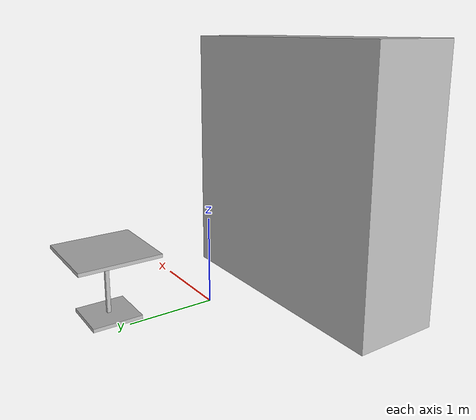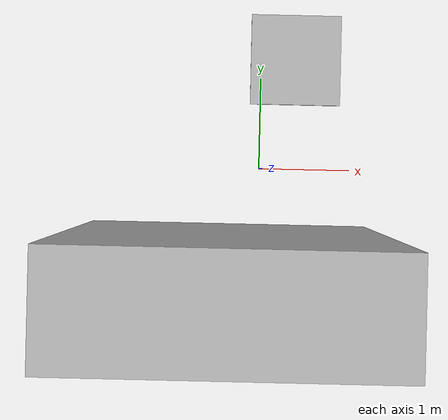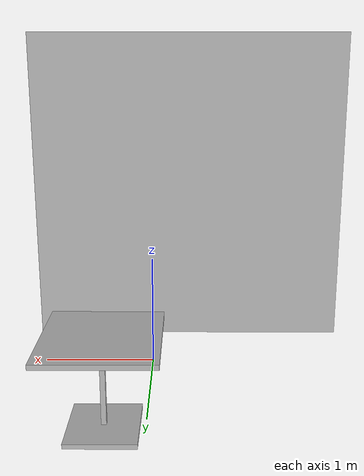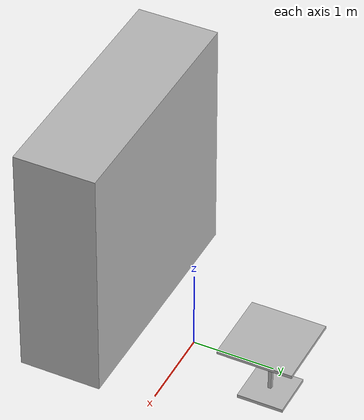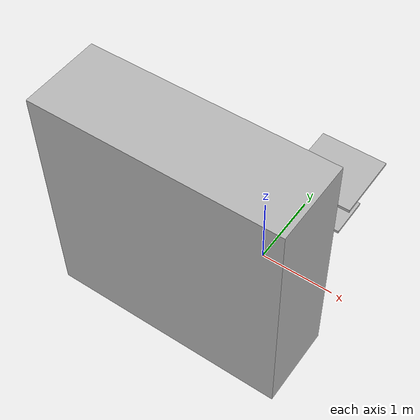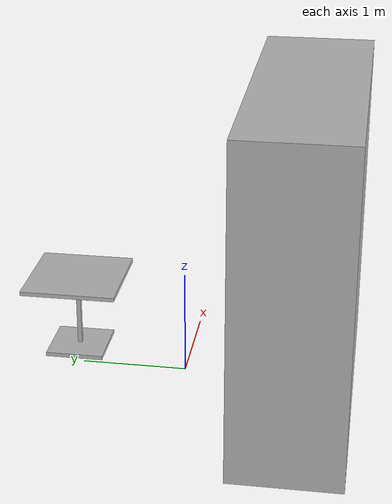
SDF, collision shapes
<?xml version='1.0'?>
<sdf version='1.7'>
  <model name='Untitledfdsssss'>
    <model name='brick_box_3x1x3'>
      <static>1</static>
      <link name='chassis'>
        <pose>0 0 1.5 0 -0 0</pose>
        <collision name='collision'>
          <geometry>
            <box>
              <size>3 1 3</size>
            </box>
          </geometry>
        </collision>
        <visual name='visual'>
          <geometry>
            <mesh>
              <uri>model://brick_box_3x1x3/meshes/simple_box.dae</uri>
              <scale>3 1 3</scale>
            </mesh>
          </geometry>
          <material>
            <script>
              <uri>model://brick_box_3x1x3/materials/scripts</uri>
              <uri>model://brick_box_3x1x3/materials/textures</uri>
              <name>BrickBox/Diffuse</name>
            </script>
          </material>
        </visual>
      </link>
      <pose>-0.323785 -1.11359 0 0 -0 0</pose>
    </model>
    <model name='cafe_table'>
      <static>1</static>
      <link name='link'>
        <collision name='surface'>
          <pose>0 0 0.755 0 -0 0</pose>
          <geometry>
            <box>
              <size>0.913 0.913 0.04</size>
            </box>
          </geometry>
        </collision>
        <collision name='column'>
          <pose>0 0 0.37 0 -0 0</pose>
          <geometry>
            <box>
              <size>0.042 0.042 0.74</size>
            </box>
          </geometry>
        </collision>
        <collision name='base'>
          <pose>0 0 0.02 0 -0 0</pose>
          <geometry>
            <box>
              <size>0.56 0.56 0.04</size>
            </box>
          </geometry>
        </collision>
        <visual name='visual'>
          <geometry>
            <mesh>
              <uri>model://cafe_table/meshes/cafe_table.dae</uri>
            </mesh>
          </geometry>
        </visual>
      </link>
      <pose>0.323785 1.11359 0 0 -0 0</pose>
    </model>
    <static>0</static>
    <allow_auto_disable>1</allow_auto_disable>
  </model>
</sdf>
